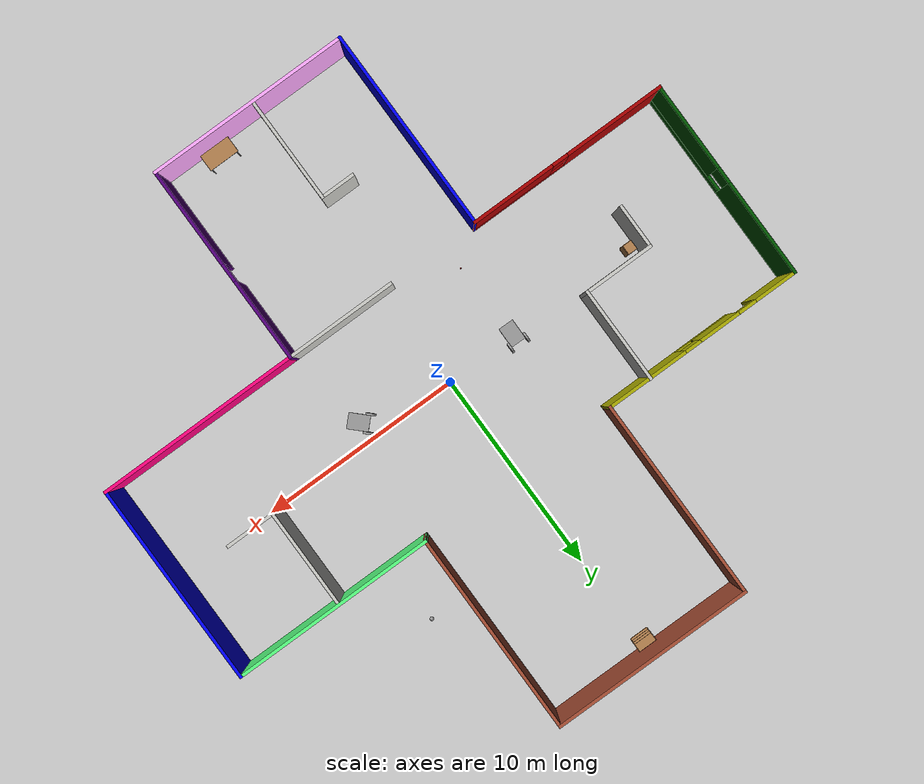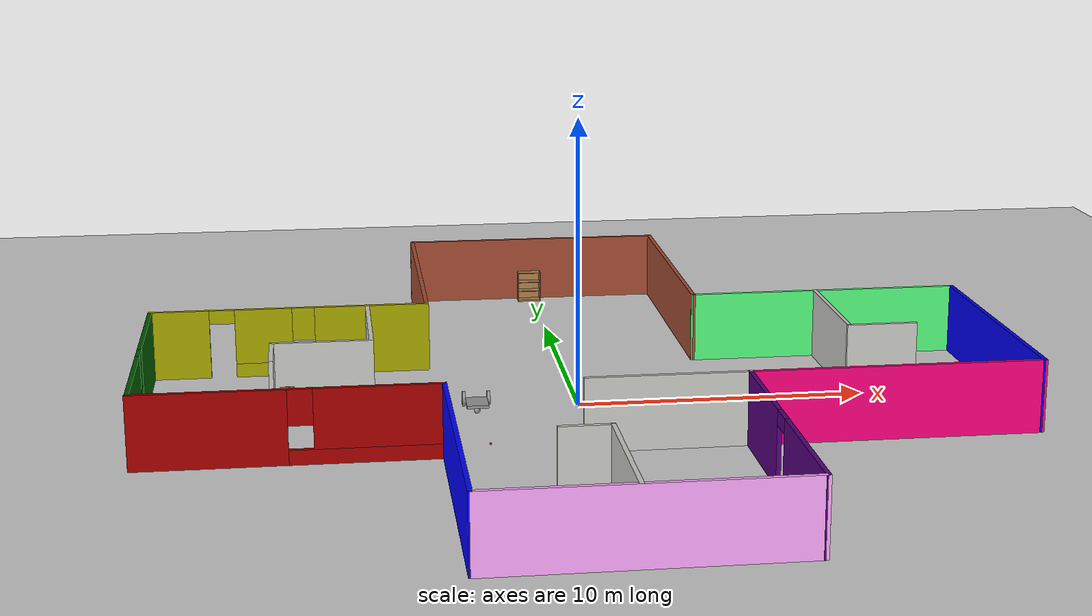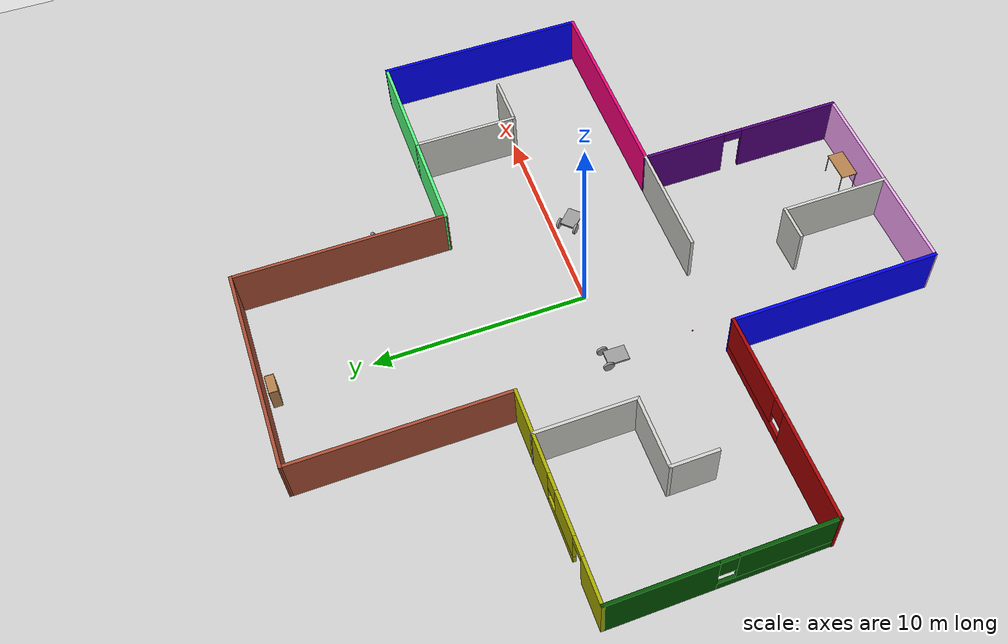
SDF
<sdf version="1.6">
 <world name="default">
  <plugin name="sumWelcome" filename="libsumWelcome.so"/>
  <light name="sun" type="directional">
   <pose>0 0 10 0 -0 0</pose>
   <diffuse>0.8 0.8 0.8 1</diffuse>
   <specular>0.2 0.2 0.2 1</specular>
   <attenuation>
    <range>1000</range>
    <constant>0.9</constant>
    <linear>0.01</linear>
    <quadratic>0.001</quadratic>
   </attenuation>
   <direction>-0.5 0.1 -0.9</direction>
  </light>
  <model name="ground_plane">
   <static>1</static>
   <link name="link">
    <collision name="collision">
     <geometry><plane><normal>0 0 1</normal><size>100 100</size></plane></geometry>
     <surface><friction><ode><mu>100</mu><mu2>50</mu2></ode></friction></surface>
    </collision>
    <visual name="visual">
     <cast_shadows>0</cast_shadows>
     <geometry><plane><normal>0 0 1</normal><size>100 100</size></plane></geometry>
     <material>
      <script><uri>file://media/materials/scripts/gazebo.material</uri><name>Gazebo/Grey</name></script>
     </material>
    </visual>
   </link>
  </model>
  <gravity>0 0 -9.8</gravity>
  <magnetic_field>6e-06 2.3e-05 -4.2e-05</magnetic_field>
  <atmosphere type="adiabatic"/>
  <physics name="default_physics" default="0" type="ode">
   <max_step_size>0.001</max_step_size>
   <real_time_factor>1</real_time_factor>
   <real_time_update_rate>1000</real_time_update_rate>
  </physics>
  <scene><ambient>0.4 0.4 0.4 1</ambient><background>0.7 0.7 0.7 1</background><shadows>1</shadows></scene>
  <spherical_coordinates>
   <surface_model>EARTH_WGS84</surface_model>
   <latitude_deg>0</latitude_deg>
   <longitude_deg>0</longitude_deg>
   <elevation>0</elevation>
   <heading_deg>0</heading_deg>
  </spherical_coordinates>
  <model name="SumBuilding">
   <link name="Wall_1">
    <collision name="Wall_1_Collision">
     <geometry><box><size>10 0.15 2.5</size></box></geometry>
     <pose>0 0 1.25 0 -0 0</pose>
    </collision>
    <visual name="Wall_1_Visual">
     <pose>0 0 1.25 0 -0 0</pose>
     <geometry><box><size>10 0.15 2.5</size></box></geometry>
     <material>
      <script><uri>file://media/materials/scripts/gazebo.material</uri><name>Gazebo/Bricks</name></script>
      <ambient>0 1 0 1</ambient>
     </material>
     <meta><layer>0</layer></meta>
    </visual>
    <pose>0.013093 14.7751 0 0 0 -0.003397</pose>
   </link>
   <link name="Wall_11">
    <pose>-9.85305 -4.92335 0 0 -0 0</pose>
    <visual name="Wall_11_Visual_0">
     <pose>-2.50345 0 1.25 0 -0 0</pose>
     <geometry><box><size>4.99311 0.15 2.5</size></box></geometry>
     <material>
      <script><uri>file://media/materials/scripts/gazebo.material</uri><name>Gazebo/Grey</name></script>
      <ambient>0.666667 0 0 1</ambient>
     </material>
     <meta><layer>0</layer></meta>
    </visual>
    <collision name="Wall_11_Collision_0">
     <geometry><box><size>4.99311 0.15 2.5</size></box></geometry>
     <pose>-2.50345 0 1.25 0 -0 0</pose>
    </collision>
    <visual name="Wall_11_Visual_1">
     <pose>2.49655 0 0.25 0 -0 0</pose>
     <geometry><box><size>5.00689 0.15 0.5</size></box></geometry>
     <material>
      <script><uri>file://media/materials/scripts/gazebo.material</uri><name>Gazebo/Grey</name></script>
      <ambient>0.666667 0 0 1</ambient>
     </material>
     <meta><layer>0</layer></meta>
    </visual>
    <collision name="Wall_11_Collision_1">
     <geometry><box><size>5.00689 0.15 0.5</size></box></geometry>
     <pose>2.49655 0 0.25 0 -0 0</pose>
    </collision>
    <visual name="Wall_11_Visual_2">
     <pose>2.89655 0 1.5 0 -0 0</pose>
     <geometry><box><size>4.20689 0.15 2</size></box></geometry>
     <material>
      <script><uri>file://media/materials/scripts/gazebo.material</uri><name>Gazebo/Grey</name></script>
      <ambient>0.666667 0 0 1</ambient>
     </material>
     <meta><layer>0</layer></meta>
    </visual>
    <collision name="Wall_11_Collision_2">
     <geometry><box><size>4.20689 0.15 2</size></box></geometry>
     <pose>2.89655 0 1.5 0 -0 0</pose>
    </collision>
    <visual name="Wall_11_Visual_3">
     <pose>0.393106 0 1.9 0 -0 0</pose>
     <geometry><box><size>0.8 0.15 1.2</size></box></geometry>
     <material>
      <script><uri>file://media/materials/scripts/gazebo.material</uri><name>Gazebo/Grey</name></script>
      <ambient>0.666667 0 0 1</ambient>
     </material>
     <meta><layer>0</layer></meta>
    </visual>
    <collision name="Wall_11_Collision_3">
     <geometry><box><size>0.8 0.15 1.2</size></box></geometry>
     <pose>0.393106 0 1.9 0 -0 0</pose>
    </collision>
   </link>
   <link name="Wall_13">
    <collision name="Wall_13_Collision">
     <geometry><box><size>10 0.15 2.5</size></box></geometry>
     <pose>0 0 1.25 0 -0 0</pose>
    </collision>
    <visual name="Wall_13_Visual">
     <pose>0 0 1.25 0 -0 0</pose>
     <geometry><box><size>10 0.15 2.5</size></box></geometry>
     <material>
      <script><uri>file://media/materials/scripts/gazebo.material</uri><name>Gazebo/Grey</name></script>
      <ambient>0 0 1 1</ambient>
     </material>
     <meta><layer>0</layer></meta>
    </visual>
    <pose>-4.92501 -9.84834 0 0 0 -1.57018</pose>
   </link>
   <link name="Wall_15">
    <collision name="Wall_15_Collision">
     <geometry><box><size>10 0.15 2.5</size></box></geometry>
     <pose>0 0 1.25 0 -0 0</pose>
    </collision>
    <visual name="Wall_15_Visual">
     <pose>0 0 1.25 0 -0 0</pose>
     <geometry><box><size>10 0.15 2.5</size></box></geometry>
     <material>
      <script><uri>file://media/materials/scripts/gazebo.material</uri><name>Gazebo/Grey</name></script>
      <ambient>1 0.666667 1 1</ambient>
     </material>
     <meta><layer>0</layer></meta>
    </visual>
    <pose>0.003026 -14.7827 0 0 0 -0.001891</pose>
   </link>
   <link name="Wall_17">
    <pose>4.92801 -9.86697 0 0 -0 1.5708</pose>
    <visual name="Wall_17_Visual_0">
     <pose>-2.50628 0 1.25 0 -0 0</pose>
     <geometry><box><size>4.98743 0.15 2.5</size></box></geometry>
     <material>
      <script><uri>file://media/materials/scripts/gazebo.material</uri><name>Gazebo/Grey</name></script>
      <ambient>0.333333 0 0.498039 1</ambient>
     </material>
     <meta><layer>0</layer></meta>
    </visual>
    <collision name="Wall_17_Collision_0">
     <geometry><box><size>4.98743 0.15 2.5</size></box></geometry>
     <pose>-2.50628 0 1.25 0 -0 0</pose>
    </collision>
    <visual name="Wall_17_Visual_1">
     <pose>2.94372 0 1.25 0 -0 0</pose>
     <geometry><box><size>4.11257 0.15 2.5</size></box></geometry>
     <material>
      <script><uri>file://media/materials/scripts/gazebo.material</uri><name>Gazebo/Grey</name></script>
      <ambient>0.333333 0 0.498039 1</ambient>
     </material>
     <meta><layer>0</layer></meta>
    </visual>
    <collision name="Wall_17_Collision_1">
     <geometry><box><size>4.11257 0.15 2.5</size></box></geometry>
     <pose>2.94372 0 1.25 0 -0 0</pose>
    </collision>
    <visual name="Wall_17_Visual_2">
     <pose>0.437432 0 2.25 0 -0 0</pose>
     <geometry><box><size>0.9 0.15 0.5</size></box></geometry>
     <material>
      <script><uri>file://media/materials/scripts/gazebo.material</uri><name>Gazebo/Grey</name></script>
      <ambient>0.333333 0 0.498039 1</ambient>
     </material>
     <meta><layer>0</layer></meta>
    </visual>
    <collision name="Wall_17_Collision_2">
     <geometry><box><size>0.9 0.15 0.5</size></box></geometry>
     <pose>0.437432 0 2.25 0 -0 0</pose>
    </collision>
   </link>
   <link name="Wall_19">
    <collision name="Wall_19_Collision">
     <geometry><box><size>10 0.15 2.5</size></box></geometry>
     <pose>0 0 1.25 0 -0 0</pose>
    </collision>
    <visual name="Wall_19_Visual">
     <pose>0 0 1.25 0 -0 0</pose>
     <geometry><box><size>10 0.15 2.5</size></box></geometry>
     <material>
      <script><uri>file://media/materials/scripts/gazebo.material</uri><name>Gazebo/Grey</name></script>
      <ambient>1 0 0.498039 1</ambient>
     </material>
     <meta><layer>0</layer></meta>
    </visual>
    <pose>9.85301 -4.94178 0 0 -0 3.8e-05</pose>
   </link>
   <link name="Wall_21">
    <collision name="Wall_21_Collision">
     <geometry><box><size>10 0.15 2.5</size></box></geometry>
     <pose>0 0 1.25 0 -0 0</pose>
    </collision>
    <visual name="Wall_21_Visual">
     <pose>0 0 1.25 0 -0 0</pose>
     <geometry><box><size>10 0.15 2.5</size></box></geometry>
     <material>
      <script><uri>file://media/materials/scripts/gazebo.material</uri><name>Gazebo/Grey</name></script>
      <ambient>0 0 1 1</ambient>
     </material>
     <meta><layer>0</layer></meta>
    </visual>
    <pose>14.7753 -0.016591 0 0 -0 1.57134</pose>
   </link>
   <link name="Wall_23">
    <collision name="Wall_23_Collision">
     <geometry><box><size>10 0.15 2.5</size></box></geometry>
     <pose>0 0 1.25 0 -0 0</pose>
    </collision>
    <visual name="Wall_23_Visual">
     <pose>0 0 1.25 0 -0 0</pose>
     <geometry><box><size>10 0.15 2.5</size></box></geometry>
     <material>
      <script><uri>file://media/materials/scripts/gazebo.material</uri><name>Gazebo/Grey</name></script>
      <ambient>0.333333 1 0.498039 1</ambient>
     </material>
     <meta><layer>0</layer></meta>
    </visual>
    <pose>9.84762 4.90841 0 0 -0 3.14159</pose>
   </link>
   <link name="Wall_27">
    <collision name="Wall_27_Collision">
     <geometry><box><size>10 0.15 2.5</size></box></geometry>
     <pose>0 0 1.25 0 -0 0</pose>
    </collision>
    <visual name="Wall_27_Visual">
     <pose>0 0 1.25 0 -0 0</pose>
     <geometry><box><size>10 0.15 2.5</size></box></geometry>
     <material>
      <script><uri>file://media/materials/scripts/gazebo.material</uri><name>Gazebo/Bricks</name></script>
      <ambient>1 1 0 1</ambient>
     </material>
     <meta><layer>0</layer></meta>
    </visual>
    <pose>4.93035 9.8334 0 0 -0 1.56923</pose>
   </link>
   <link name="Wall_29">
    <collision name="Wall_29_Collision">
     <geometry><box><size>5 0.15 2.5</size></box></geometry>
     <pose>0 0 1.25 0 -0 0</pose>
    </collision>
    <visual name="Wall_29_Visual">
     <pose>0 0 1.25 0 -0 0</pose>
     <geometry><box><size>5 0.15 2.5</size></box></geometry>
     <material>
      <script><uri>file://media/materials/scripts/gazebo.material</uri><name>Gazebo/CeilingTiled</name></script>
      <ambient>0.333333 0.333333 1 1</ambient>
     </material>
     <meta><layer>0</layer></meta>
    </visual>
    <pose>9.53345 2.48414 0 0 0 -1.5708</pose>
   </link>
   <link name="Wall_3">
    <collision name="Wall_3_Collision">
     <geometry><box><size>10 0.15 2.5</size></box></geometry>
     <pose>0 0 1.25 0 -0 0</pose>
    </collision>
    <visual name="Wall_3_Visual">
     <pose>0 0 1.25 0 -0 0</pose>
     <geometry><box><size>10 0.15 2.5</size></box></geometry>
     <material>
      <script><uri>file://media/materials/scripts/gazebo.material</uri><name>Gazebo/Bricks</name></script>
      <ambient>0.666667 0.333333 0 1</ambient>
     </material>
     <meta><layer>0</layer></meta>
    </visual>
    <pose>-4.91188 9.86685 0 0 0 -1.5708</pose>
   </link>
   <link name="Wall_30">
    <collision name="Wall_30_Collision">
     <geometry><box><size>2.5 0.15 2.5</size></box></geometry>
     <pose>0 0 1.25 0 -0 0</pose>
    </collision>
    <visual name="Wall_30_Visual">
     <pose>0 0 1.25 0 -0 0</pose>
     <geometry><box><size>2.5 0.15 2.5</size></box></geometry>
     <material>
      <script><uri>file://media/materials/scripts/gazebo.material</uri><name>Gazebo/CeilingTiled</name></script>
      <ambient>0.333333 0.333333 1 1</ambient>
     </material>
     <meta><layer>0</layer></meta>
    </visual>
    <pose>10.7084 0.059135 0 0 -0 0</pose>
   </link>
   <link name="Wall_32">
    <collision name="Wall_32_Collision">
     <geometry><box><size>5.25 0.15 2.5</size></box></geometry>
     <pose>0 0 1.25 0 -0 0</pose>
    </collision>
    <visual name="Wall_32_Visual">
     <pose>0 0 1.25 0 -0 0</pose>
     <geometry><box><size>5.25 0.15 2.5</size></box></geometry>
     <material>
      <script><uri>file://media/materials/scripts/gazebo.material</uri><name>Gazebo/CeilingTiled</name></script>
      <ambient>0.333333 0.666667 1 1</ambient>
     </material>
     <meta><layer>0</layer></meta>
    </visual>
    <pose>-0.257513 -12.2298 0 0 -0 1.5708</pose>
   </link>
   <link name="Wall_33">
    <collision name="Wall_33_Collision">
     <geometry><box><size>1.75 0.15 2.5</size></box></geometry>
     <pose>0 0 1.25 0 -0 0</pose>
    </collision>
    <visual name="Wall_33_Visual">
     <pose>0 0 1.25 0 -0 0</pose>
     <geometry><box><size>1.75 0.15 2.5</size></box></geometry>
     <material>
      <script><uri>file://media/materials/scripts/gazebo.material</uri><name>Gazebo/CeilingTiled</name></script>
      <ambient>0.333333 0 0.498039 1</ambient>
     </material>
     <meta><layer>0</layer></meta>
    </visual>
    <pose>-1.05751 -9.67979 0 0 -0 3.14159</pose>
   </link>
   <link name="Wall_35">
    <collision name="Wall_35_Collision">
     <geometry><box><size>5.5 0.15 2.5</size></box></geometry>
     <pose>0 0 1.25 0 -0 0</pose>
    </collision>
    <visual name="Wall_35_Visual">
     <pose>0 0 1.25 0 -0 0</pose>
     <geometry><box><size>5.5 0.15 2.5</size></box></geometry>
     <material>
      <script><uri>file://media/materials/scripts/gazebo.material</uri><name>Gazebo/CeilingTiled</name></script>
      <ambient>1 0.666667 0 1</ambient>
     </material>
     <meta><layer>0</layer></meta>
    </visual>
    <pose>2.25301 -4.94197 0 0 -0 3.14159</pose>
   </link>
   <link name="Wall_37">
    <collision name="Wall_37_Collision">
     <geometry><box><size>4.75 0.15 2.5</size></box></geometry>
     <pose>0 0 1.25 0 -0 0</pose>
    </collision>
    <visual name="Wall_37_Visual">
     <pose>0 0 1.25 0 -0 0</pose>
     <geometry><box><size>4.75 0.15 2.5</size></box></geometry>
     <material>
      <script><uri>file://media/materials/scripts/gazebo.material</uri><name>Gazebo/CeilingTiled</name></script>
      <ambient>0.666667 0 1 1</ambient>
     </material>
     <meta><layer>0</layer></meta>
    </visual>
    <pose>-7.05233 2.66264 0 0 0 -1.5708</pose>
   </link>
   <link name="Wall_38">
    <collision name="Wall_38_Collision">
     <geometry><box><size>3.5 0.15 2.5</size></box></geometry>
     <pose>0 0 1.25 0 -0 0</pose>
    </collision>
    <visual name="Wall_38_Visual">
     <pose>0 0 1.25 0 -0 0</pose>
     <geometry><box><size>3.5 0.15 2.5</size></box></geometry>
     <material>
      <script><uri>file://media/materials/scripts/gazebo.material</uri><name>Gazebo/CeilingTiled</name></script>
      <ambient>0.666667 0 1 1</ambient>
     </material>
     <meta><layer>0</layer></meta>
    </visual>
    <pose>-8.72733 0.362638 0 0 -0 3.14159</pose>
   </link>
   <link name="Wall_39">
    <collision name="Wall_39_Collision">
     <geometry><box><size>2.25 0.15 2.5</size></box></geometry>
     <pose>0 0 1.25 0 -0 0</pose>
    </collision>
    <visual name="Wall_39_Visual">
     <pose>0 0 1.25 0 -0 0</pose>
     <geometry><box><size>2.25 0.15 2.5</size></box></geometry>
     <material>
      <script><uri>file://media/materials/scripts/gazebo.material</uri><name>Gazebo/CeilingTiled</name></script>
      <ambient>0.666667 0 1 1</ambient>
     </material>
     <meta><layer>0</layer></meta>
    </visual>
    <pose>-10.4023 -0.687362 0 0 0 -1.5708</pose>
   </link>
   <link name="Wall_7">
    <pose>-9.83688 4.94185 0 0 -0 3.14159</pose>
    <visual name="Wall_7_Visual_0">
     <pose>-2.94197 0 1.25 0 -0 0</pose>
     <geometry><box><size>4.11606 0.15 2.5</size></box></geometry>
     <material>
      <script><uri>file://media/materials/scripts/gazebo.material</uri><name>Gazebo/Grey</name></script>
      <ambient>0.666667 0.666667 0 1</ambient>
     </material>
     <meta><layer>0</layer></meta>
    </visual>
    <collision name="Wall_7_Collision_0">
     <geometry><box><size>4.11606 0.15 2.5</size></box></geometry>
     <pose>-2.94197 0 1.25 0 -0 0</pose>
    </collision>
    <visual name="Wall_7_Visual_1">
     <pose>3.9276 0 1.25 0 -0 0</pose>
     <geometry><box><size>2.14481 0.15 2.5</size></box></geometry>
     <material>
      <script><uri>file://media/materials/scripts/gazebo.material</uri><name>Gazebo/Grey</name></script>
      <ambient>0.666667 0.666667 0 1</ambient>
     </material>
     <meta><layer>0</layer></meta>
    </visual>
    <collision name="Wall_7_Collision_1">
     <geometry><box><size>2.14481 0.15 2.5</size></box></geometry>
     <pose>3.9276 0 1.25 0 -0 0</pose>
    </collision>
    <visual name="Wall_7_Visual_2">
     <pose>0.535626 0 0.25 0 -0 0</pose>
     <geometry><box><size>2.83914 0.15 0.5</size></box></geometry>
     <material>
      <script><uri>file://media/materials/scripts/gazebo.material</uri><name>Gazebo/Grey</name></script>
      <ambient>0.666667 0.666667 0 1</ambient>
     </material>
     <meta><layer>0</layer></meta>
    </visual>
    <collision name="Wall_7_Collision_2">
     <geometry><box><size>2.83914 0.15 0.5</size></box></geometry>
     <pose>0.535626 0 0.25 0 -0 0</pose>
    </collision>
    <visual name="Wall_7_Visual_3">
     <pose>0.935626 0 1.5 0 -0 0</pose>
     <geometry><box><size>2.03913 0.15 2</size></box></geometry>
     <material>
      <script><uri>file://media/materials/scripts/gazebo.material</uri><name>Gazebo/Grey</name></script>
      <ambient>0.666667 0.666667 0 1</ambient>
     </material>
     <meta><layer>0</layer></meta>
    </visual>
    <collision name="Wall_7_Collision_3">
     <geometry><box><size>2.03913 0.15 2</size></box></geometry>
     <pose>0.935626 0 1.5 0 -0 0</pose>
    </collision>
    <visual name="Wall_7_Visual_4">
     <pose>-0.483942 0 1.9 0 -0 0</pose>
     <geometry><box><size>0.8 0.15 1.2</size></box></geometry>
     <material>
      <script><uri>file://media/materials/scripts/gazebo.material</uri><name>Gazebo/Grey</name></script>
      <ambient>0.666667 0.666667 0 1</ambient>
     </material>
     <meta><layer>0</layer></meta>
    </visual>
    <collision name="Wall_7_Collision_4">
     <geometry><box><size>0.8 0.15 1.2</size></box></geometry>
     <pose>-0.483942 0 1.9 0 -0 0</pose>
    </collision>
    <visual name="Wall_7_Visual_5">
     <pose>2.40519 0 2.25 0 -0 0</pose>
     <geometry><box><size>0.9 0.15 0.5</size></box></geometry>
     <material>
      <script><uri>file://media/materials/scripts/gazebo.material</uri><name>Gazebo/Grey</name></script>
      <ambient>0.666667 0.666667 0 1</ambient>
     </material>
     <meta><layer>0</layer></meta>
    </visual>
    <collision name="Wall_7_Collision_5">
     <geometry><box><size>0.9 0.15 0.5</size></box></geometry>
     <pose>2.40519 0 2.25 0 -0 0</pose>
    </collision>
   </link>
   <link name="Wall_9">
    <pose>-14.7619 0.016854 0 0 0 -1.5708</pose>
    <visual name="Wall_9_Visual_0">
     <pose>-2.57802 0 1.25 0 -0 0</pose>
     <geometry><box><size>4.84396 0.15 2.5</size></box></geometry>
     <material>
      <script><uri>file://media/materials/scripts/gazebo.material</uri><name>Gazebo/Grey</name></script>
      <ambient>0 0.333333 0 1</ambient>
     </material>
     <meta><layer>0</layer></meta>
    </visual>
    <collision name="Wall_9_Collision_0">
     <geometry><box><size>4.84396 0.15 2.5</size></box></geometry>
     <pose>-2.57802 0 1.25 0 -0 0</pose>
    </collision>
    <visual name="Wall_9_Visual_1">
     <pose>2.42198 0 0.25 0 -0 0</pose>
     <geometry><box><size>5.15604 0.15 0.5</size></box></geometry>
     <material>
      <script><uri>file://media/materials/scripts/gazebo.material</uri><name>Gazebo/Grey</name></script>
      <ambient>0 0.333333 0 1</ambient>
     </material>
     <meta><layer>0</layer></meta>
    </visual>
    <collision name="Wall_9_Collision_1">
     <geometry><box><size>5.15604 0.15 0.5</size></box></geometry>
     <pose>2.42198 0 0.25 0 -0 0</pose>
    </collision>
    <visual name="Wall_9_Visual_2">
     <pose>2.82198 0 1.5 0 -0 0</pose>
     <geometry><box><size>4.35604 0.15 2</size></box></geometry>
     <material>
      <script><uri>file://media/materials/scripts/gazebo.material</uri><name>Gazebo/Grey</name></script>
      <ambient>0 0.333333 0 1</ambient>
     </material>
     <meta><layer>0</layer></meta>
    </visual>
    <collision name="Wall_9_Collision_2">
     <geometry><box><size>4.35604 0.15 2</size></box></geometry>
     <pose>2.82198 0 1.5 0 -0 0</pose>
    </collision>
    <visual name="Wall_9_Visual_3">
     <pose>0.243959 0 1.9 0 -0 0</pose>
     <geometry><box><size>0.8 0.15 1.2</size></box></geometry>
     <material>
      <script><uri>file://media/materials/scripts/gazebo.material</uri><name>Gazebo/Grey</name></script>
      <ambient>0 0.333333 0 1</ambient>
     </material>
     <meta><layer>0</layer></meta>
    </visual>
    <collision name="Wall_9_Collision_3">
     <geometry><box><size>0.8 0.15 1.2</size></box></geometry>
     <pose>0.243959 0 1.9 0 -0 0</pose>
    </collision>
   </link>
   <static>1</static>
  </model>
  <model name="cabinet">
   <static>1</static>
   <link name="cabinet_bottom_plate">
    <inertial>
     <pose>0 0 -1 0 -0 0</pose>
     <inertia><ixx>2.05</ixx><ixy>0</ixy><ixz>0</ixz><iyy>2.05</iyy><iyz>0</iyz><izz>2.05</izz></inertia>
     <mass>25</mass>
    </inertial>
    <collision name="cabinet_bottom_plate_geom">
     <pose>0 0 0.01 0 -0 0</pose>
     <geometry><box><size>0.45 0.45 0.02</size></box></geometry>
    </collision>
    <visual name="cabinet_bottom_plate_geom_visual">
     <pose>0 0 0.01 0 -0 0</pose>
     <geometry><box><size>0.45 0.45 0.02</size></box></geometry>
     <material>
      <script><uri>file://media/materials/scripts/gazebo.material</uri><name>Gazebo/Wood</name></script>
     </material>
    </visual>
    <collision name="cabinet_bottom_plate_geom_cabinet_back_plate">
     <pose>0.235 0 0.51 0 -0 0</pose>
     <geometry><box><size>0.02 0.45 1.02</size></box></geometry>
    </collision>
    <visual name="cabinet_bottom_plate_geom_cabinet_back_plate_visual">
     <pose>0.235 0 0.51 0 -0 0</pose>
     <geometry><box><size>0.02 0.45 1.02</size></box></geometry>
     <material>
      <script><uri>file://media/materials/scripts/gazebo.material</uri><name>Gazebo/Wood</name></script>
     </material>
    </visual>
    <collision name="cabinet_bottom_plate_geom_cabinet_left_plate">
     <pose>0 0.235 0.51 0 -0 0</pose>
     <geometry><box><size>0.45 0.02 1.02</size></box></geometry>
    </collision>
    <visual name="cabinet_bottom_plate_geom_cabinet_left_plate_visual">
     <pose>0 0.235 0.51 0 -0 0</pose>
     <geometry><box><size>0.45 0.02 1.02</size></box></geometry>
     <material>
      <script><uri>file://media/materials/scripts/gazebo.material</uri><name>Gazebo/Wood</name></script>
     </material>
    </visual>
    <collision name="cabinet_bottom_plate_geom_cabinet_middle_plate">
     <pose>0 0 0.51 0 -0 0</pose>
     <geometry><box><size>0.45 0.45 0.02</size></box></geometry>
    </collision>
    <visual name="cabinet_bottom_plate_geom_cabinet_middle_plate_visual">
     <pose>0 0 0.51 0 -0 0</pose>
     <geometry><box><size>0.45 0.45 0.02</size></box></geometry>
     <material>
      <script><uri>file://media/materials/scripts/gazebo.material</uri><name>Gazebo/Wood</name></script>
     </material>
    </visual>
    <collision name="cabinet_bottom_plate_geom_cabinet_right_plate">
     <pose>0 -0.235 0.51 0 -0 0</pose>
     <geometry><box><size>0.45 0.02 1.02</size></box></geometry>
    </collision>
    <visual name="cabinet_bottom_plate_geom_cabinet_right_plate_visual">
     <pose>0 -0.235 0.51 0 -0 0</pose>
     <geometry><box><size>0.45 0.02 1.02</size></box></geometry>
     <material>
      <script><uri>file://media/materials/scripts/gazebo.material</uri><name>Gazebo/Wood</name></script>
     </material>
    </visual>
    <collision name="cabinet_bottom_plate_geom_cabinet_top_plate">
     <pose>0 0 1.01 0 -0 0</pose>
     <geometry><box><size>0.45 0.45 0.02</size></box></geometry>
    </collision>
    <visual name="cabinet_bottom_plate_geom_cabinet_top_plate_visual">
     <pose>0 0 1.01 0 -0 0</pose>
     <geometry><box><size>0.45 0.45 0.02</size></box></geometry>
     <material>
      <script><uri>file://media/materials/scripts/gazebo.material</uri><name>Gazebo/Wood</name></script>
     </material>
    </visual>
   </link>
   <pose>-9.9403 -0.12043 0 0 -0 0</pose>
  </model>
  <model name="bookshelf">
   <static>1</static>
   <link name="link">
    <inertial><mass>1</mass></inertial>
    <collision name="back">
     <pose>0 0.005 0.6 0 -0 0</pose>
     <geometry><box><size>0.9 0.01 1.2</size></box></geometry>
    </collision>
    <visual name="visual1">
     <pose>0 0.005 0.6 0 -0 0</pose>
     <geometry><box><size>0.9 0.01 1.2</size></box></geometry>
     <material>
      <script><uri>file://media/materials/scripts/gazebo.material</uri><name>Gazebo/Wood</name></script>
     </material>
    </visual>
    <collision name="left_side">
     <pose>0.45 -0.195 0.6 0 -0 0</pose>
     <geometry><box><size>0.02 0.4 1.2</size></box></geometry>
    </collision>
    <visual name="visual2">
     <pose>0.45 -0.195 0.6 0 -0 0</pose>
     <geometry><box><size>0.02 0.4 1.2</size></box></geometry>
     <material>
      <script><uri>file://media/materials/scripts/gazebo.material</uri><name>Gazebo/Wood</name></script>
     </material>
    </visual>
    <collision name="right_side">
     <pose>-0.45 -0.195 0.6 0 -0 0</pose>
     <geometry><box><size>0.02 0.4 1.2</size></box></geometry>
    </collision>
    <visual name="visual3">
     <pose>-0.45 -0.195 0.6 0 -0 0</pose>
     <geometry><box><size>0.02 0.4 1.2</size></box></geometry>
     <material>
      <script><uri>file://media/materials/scripts/gazebo.material</uri><name>Gazebo/Wood</name></script>
     </material>
    </visual>
    <collision name="bottom">
     <pose>0 -0.195 0.03 0 -0 0</pose>
     <geometry><box><size>0.88 0.4 0.06</size></box></geometry>
    </collision>
    <visual name="visual4">
     <pose>0 -0.195 0.03 0 -0 0</pose>
     <geometry><box><size>0.88 0.4 0.06</size></box></geometry>
     <material>
      <script><uri>file://media/materials/scripts/gazebo.material</uri><name>Gazebo/Wood</name></script>
     </material>
    </visual>
    <collision name="top">
     <pose>0 -0.195 1.19 0 -0 0</pose>
     <geometry><box><size>0.88 0.4 0.02</size></box></geometry>
    </collision>
    <visual name="visual5">
     <pose>0 -0.195 1.19 0 -0 0</pose>
     <geometry><box><size>0.88 0.4 0.02</size></box></geometry>
     <material>
      <script><uri>file://media/materials/scripts/gazebo.material</uri><name>Gazebo/Wood</name></script>
     </material>
    </visual>
    <collision name="low_shelf">
     <pose>0 -0.195 0.43 0 -0 0</pose>
     <geometry><box><size>0.88 0.4 0.02</size></box></geometry>
    </collision>
    <visual name="visual6">
     <pose>0 -0.195 0.43 0 -0 0</pose>
     <geometry><box><size>0.88 0.4 0.02</size></box></geometry>
     <material>
      <script><uri>file://media/materials/scripts/gazebo.material</uri><name>Gazebo/Wood</name></script>
     </material>
    </visual>
    <collision name="high_shelf">
     <pose>0 -0.195 0.8 0 -0 0</pose>
     <geometry><box><size>0.88 0.4 0.02</size></box></geometry>
    </collision>
    <visual name="visual7">
     <pose>0 -0.195 0.8 0 -0 0</pose>
     <geometry><box><size>0.88 0.4 0.02</size></box></geometry>
     <material>
      <script><uri>file://media/materials/scripts/gazebo.material</uri><name>Gazebo/Wood</name></script>
     </material>
    </visual>
   </link>
   <pose>-0.164365 14.5404 0 0 -0 0</pose>
  </model>
  <model name="cricket_ball">
   <link name="link">
    <pose>0 0 0.0375 0 -0 0</pose>
    <inertial>
     <mass>0.1467</mass>
     <inertia>
      <ixx>8.25187e-05</ixx>
      <ixy>0</ixy>
      <ixz>0</ixz>
      <iyy>8.25187e-05</iyy>
      <iyz>0</iyz>
      <izz>8.25187e-05</izz>
     </inertia>
    </inertial>
    <collision name="collision">
     <geometry><sphere><radius>0.0375</radius></sphere></geometry>
     <surface>
      <contact>
       <poissons_ratio>0.347</poissons_ratio>
       <elastic_modulus>8.8e+09</elastic_modulus>
       <ode><kp>100000</kp><kd>100</kd><max_vel>100</max_vel><min_depth>0.001</min_depth></ode>
      </contact>
      <friction>
       <torsional>
        <coefficient>1</coefficient>
        <use_patch_radius>0</use_patch_radius>
        <surface_radius>0.01</surface_radius>
       </torsional>
      </friction>
     </surface>
    </collision>
    <visual name="visual">
     <geometry><sphere><radius>0.0375</radius></sphere></geometry>
     <material>
      <script><uri>file://media/materials/scripts/gazebo.material</uri><name>Gazebo/Red</name></script>
     </material>
    </visual>
    <velocity_decay><linear>0</linear><angular>0.005</angular></velocity_decay>
   </link>
   <pose>-3.3977 -3.86015 0.008993 0 -0 0</pose>
  </model>
  <model name="table">
   <static>1</static>
   <link name="link">
    <collision name="surface">
     <pose>0 0 1 0 -0 0</pose>
     <geometry><box><size>1.5 0.8 0.03</size></box></geometry>
     <surface><friction><ode><mu>0.6</mu><mu2>0.6</mu2></ode></friction></surface>
    </collision>
    <visual name="visual1">
     <pose>0 0 1 0 -0 0</pose>
     <geometry><box><size>1.5 0.8 0.03</size></box></geometry>
     <material>
      <script><uri>file://media/materials/scripts/gazebo.material</uri><name>Gazebo/Wood</name></script>
     </material>
    </visual>
    <collision name="front_left_leg">
     <pose>0.68 0.38 0.5 0 -0 0</pose>
     <geometry><cylinder><radius>0.02</radius><length>1</length></cylinder></geometry>
    </collision>
    <visual name="front_left_leg">
     <pose>0.68 0.38 0.5 0 -0 0</pose>
     <geometry><cylinder><radius>0.02</radius><length>1</length></cylinder></geometry>
     <material>
      <script><uri>file://media/materials/scripts/gazebo.material</uri><name>Gazebo/Grey</name></script>
     </material>
    </visual>
    <collision name="front_right_leg">
     <pose>0.68 -0.38 0.5 0 -0 0</pose>
     <geometry><cylinder><radius>0.02</radius><length>1</length></cylinder></geometry>
    </collision>
    <visual name="front_right_leg">
     <pose>0.68 -0.38 0.5 0 -0 0</pose>
     <geometry><cylinder><radius>0.02</radius><length>1</length></cylinder></geometry>
     <material>
      <script><uri>file://media/materials/scripts/gazebo.material</uri><name>Gazebo/Grey</name></script>
     </material>
    </visual>
    <collision name="back_right_leg">
     <pose>-0.68 -0.38 0.5 0 -0 0</pose>
     <geometry><cylinder><radius>0.02</radius><length>1</length></cylinder></geometry>
    </collision>
    <visual name="back_right_leg">
     <pose>-0.68 -0.38 0.5 0 -0 0</pose>
     <geometry><cylinder><radius>0.02</radius><length>1</length></cylinder></geometry>
     <material>
      <script><uri>file://media/materials/scripts/gazebo.material</uri><name>Gazebo/Grey</name></script>
     </material>
    </visual>
    <collision name="back_left_leg">
     <pose>-0.68 0.38 0.5 0 -0 0</pose>
     <geometry><cylinder><radius>0.02</radius><length>1</length></cylinder></geometry>
    </collision>
    <visual name="back_left_leg">
     <pose>-0.68 0.38 0.5 0 -0 0</pose>
     <geometry><cylinder><radius>0.02</radius><length>1</length></cylinder></geometry>
     <material>
      <script><uri>file://media/materials/scripts/gazebo.material</uri><name>Gazebo/Grey</name></script>
     </material>
    </visual>
   </link>
   <pose>2.2819 -14.2061 0 0 -0 0</pose>
  </model>
  <model name="RobotCar">
   <link name="link_0">
    <pose>0.005 -0.15 0.0375 0 -0 0</pose>
    <inertial>
     <mass>1</mass>
     <inertia>
      <ixx>0.166667</ixx>
      <ixy>0</ixy>
      <ixz>0</ixz>
      <iyy>0.166667</iyy>
      <iyz>0</iyz>
      <izz>0.166667</izz>
     </inertia>
    </inertial>
    <visual name="visual">
     <geometry><box><size>0.75 1 0.1</size></box></geometry>
     <material>
      <lighting>1</lighting>
      <script><uri>file://media/materials/scripts/gazebo.material</uri><name>Gazebo/Grey</name></script>
      <shader type="pixel"><normal_map>__default__</normal_map></shader>
      <ambient>0.3 0.3 0.3 1</ambient>
      <diffuse>0.7 0.7 0.7 1</diffuse>
      <specular>0.01 0.01 0.01 1</specular>
      <emissive>0 0 0 1</emissive>
     </material>
    </visual>
    <collision name="collision">
     <geometry><box><size>0.75 1 0.1</size></box></geometry>
     <surface>
      <friction>
       <ode><mu>1</mu><mu2>1</mu2><fdir1>0 0 0</fdir1><slip1>0</slip1><slip2>0</slip2></ode>
       <torsional>
        <coefficient>1</coefficient>
        <patch_radius>0</patch_radius>
        <surface_radius>0</surface_radius>
        <use_patch_radius>1</use_patch_radius>
        <ode><slip>0</slip></ode>
       </torsional>
      </friction>
      <bounce><restitution_coefficient>0</restitution_coefficient><threshold>1e+06</threshold></bounce>
      <contact>
       <collide_without_contact>0</collide_without_contact>
       <collide_without_contact_bitmask>1</collide_without_contact_bitmask>
       <collide_bitmask>1</collide_bitmask>
       <ode>
        <soft_cfm>0</soft_cfm>
        <soft_erp>0.2</soft_erp>
        <kp>1e+13</kp>
        <kd>1</kd>
        <max_vel>0.01</max_vel>
        <min_depth>0</min_depth>
       </ode>
       <bullet>
        <split_impulse>1</split_impulse>
        <split_impulse_penetration_threshold>-0.01</split_impulse_penetration_threshold>
        <soft_cfm>0</soft_cfm>
        <soft_erp>0.2</soft_erp>
        <kp>1e+13</kp>
        <kd>1</kd>
       </bullet>
      </contact>
     </surface>
    </collision>
   </link>
   <link name="link_1">
    <pose>0.430024 0.35 0.0375 0 1.5707 0</pose>
    <inertial>
     <mass>1</mass>
     <inertia><ixx>0.145833</ixx><ixy>0</ixy><ixz>0</ixz><iyy>0.145833</iyy><iyz>0</iyz><izz>0.125</izz></inertia>
    </inertial>
    <visual name="visual">
     <geometry><cylinder><radius>0.25</radius><length>0.1</length></cylinder></geometry>
     <material>
      <lighting>1</lighting>
      <script><uri>file://media/materials/scripts/gazebo.material</uri><name>Gazebo/Grey</name></script>
      <shader type="pixel"><normal_map>__default__</normal_map></shader>
      <ambient>0.3 0.3 0.3 1</ambient>
      <diffuse>0.7 0.7 0.7 1</diffuse>
      <specular>0.01 0.01 0.01 1</specular>
      <emissive>0 0 0 1</emissive>
     </material>
    </visual>
    <collision name="collision">
     <geometry><cylinder><radius>0.25</radius><length>0.1</length></cylinder></geometry>
     <surface>
      <friction>
       <ode><mu>1</mu><mu2>1</mu2><fdir1>0 0 0</fdir1><slip1>0</slip1><slip2>0</slip2></ode>
       <torsional>
        <coefficient>1</coefficient>
        <patch_radius>0</patch_radius>
        <surface_radius>0</surface_radius>
        <use_patch_radius>1</use_patch_radius>
        <ode><slip>0</slip></ode>
       </torsional>
      </friction>
      <bounce><restitution_coefficient>0</restitution_coefficient><threshold>1e+06</threshold></bounce>
      <contact>
       <collide_without_contact>0</collide_without_contact>
       <collide_without_contact_bitmask>1</collide_without_contact_bitmask>
       <collide_bitmask>1</collide_bitmask>
       <ode>
        <soft_cfm>0</soft_cfm>
        <soft_erp>0.2</soft_erp>
        <kp>1e+13</kp>
        <kd>1</kd>
        <max_vel>0.01</max_vel>
        <min_depth>0</min_depth>
       </ode>
       <bullet>
        <split_impulse>1</split_impulse>
        <split_impulse_penetration_threshold>-0.01</split_impulse_penetration_threshold>
        <soft_cfm>0</soft_cfm>
        <soft_erp>0.2</soft_erp>
        <kp>1e+13</kp>
        <kd>1</kd>
       </bullet>
      </contact>
     </surface>
    </collision>
   </link>
   <link name="link_1_clone">
    <pose>-0.420024 0.35 0.0375 0 1.5707 0</pose>
    <inertial>
     <mass>1</mass>
     <inertia><ixx>0.145833</ixx><ixy>0</ixy><ixz>0</ixz><iyy>0.145833</iyy><iyz>0</iyz><izz>0.125</izz></inertia>
    </inertial>
    <visual name="visual">
     <geometry><cylinder><radius>0.25</radius><length>0.1</length></cylinder></geometry>
     <material>
      <lighting>1</lighting>
      <script><uri>file://media/materials/scripts/gazebo.material</uri><name>Gazebo/Grey</name></script>
      <shader type="pixel"><normal_map>__default__</normal_map></shader>
      <ambient>0.3 0.3 0.3 1</ambient>
      <diffuse>0.7 0.7 0.7 1</diffuse>
      <specular>0.01 0.01 0.01 1</specular>
      <emissive>0 0 0 1</emissive>
     </material>
    </visual>
    <collision name="collision">
     <geometry><cylinder><radius>0.25</radius><length>0.1</length></cylinder></geometry>
     <surface>
      <friction>
       <ode><mu>1</mu><mu2>1</mu2><fdir1>0 0 0</fdir1><slip1>0</slip1><slip2>0</slip2></ode>
       <torsional>
        <coefficient>1</coefficient>
        <patch_radius>0</patch_radius>
        <surface_radius>0</surface_radius>
        <use_patch_radius>1</use_patch_radius>
        <ode><slip>0</slip></ode>
       </torsional>
      </friction>
      <bounce><restitution_coefficient>0</restitution_coefficient><threshold>1e+06</threshold></bounce>
      <contact>
       <collide_without_contact>0</collide_without_contact>
       <collide_without_contact_bitmask>1</collide_without_contact_bitmask>
       <collide_bitmask>1</collide_bitmask>
       <ode>
        <soft_cfm>0</soft_cfm>
        <soft_erp>0.2</soft_erp>
        <kp>1e+13</kp>
        <kd>1</kd>
        <max_vel>0.01</max_vel>
        <min_depth>0</min_depth>
       </ode>
       <bullet>
        <split_impulse>1</split_impulse>
        <split_impulse_penetration_threshold>-0.01</split_impulse_penetration_threshold>
        <soft_cfm>0</soft_cfm>
        <soft_erp>0.2</soft_erp>
        <kp>1e+13</kp>
        <kd>1</kd>
       </bullet>
      </contact>
     </surface>
    </collision>
   </link>
   <link name="link_2">
    <pose>-0.015 -0.55 -0.1125 0 -0 0</pose>
    <inertial>
     <mass>1</mass>
     <inertia><ixx>0.1</ixx><ixy>0</ixy><ixz>0</ixz><iyy>0.1</iyy><iyz>0</iyz><izz>0.1</izz></inertia>
    </inertial>
    <visual name="visual">
     <geometry><sphere><radius>0.1</radius></sphere></geometry>
     <material>
      <lighting>1</lighting>
      <script><uri>file://media/materials/scripts/gazebo.material</uri><name>Gazebo/Grey</name></script>
      <shader type="pixel"><normal_map>__default__</normal_map></shader>
      <ambient>0.3 0.3 0.3 1</ambient>
      <diffuse>0.7 0.7 0.7 1</diffuse>
      <specular>0.01 0.01 0.01 1</specular>
      <emissive>0 0 0 1</emissive>
     </material>
    </visual>
    <collision name="collision">
     <geometry><sphere><radius>0.1</radius></sphere></geometry>
     <surface>
      <friction>
       <ode><mu>1</mu><mu2>1</mu2><fdir1>0 0 0</fdir1><slip1>0</slip1><slip2>0</slip2></ode>
       <torsional>
        <coefficient>1</coefficient>
        <patch_radius>0</patch_radius>
        <surface_radius>0</surface_radius>
        <use_patch_radius>1</use_patch_radius>
        <ode><slip>0</slip></ode>
       </torsional>
      </friction>
      <bounce><restitution_coefficient>0</restitution_coefficient><threshold>1e+06</threshold></bounce>
      <contact>
       <collide_without_contact>0</collide_without_contact>
       <collide_without_contact_bitmask>1</collide_without_contact_bitmask>
       <collide_bitmask>1</collide_bitmask>
       <ode>
        <soft_cfm>0</soft_cfm>
        <soft_erp>0.2</soft_erp>
        <kp>1e+13</kp>
        <kd>1</kd>
        <max_vel>0.01</max_vel>
        <min_depth>0</min_depth>
       </ode>
       <bullet>
        <split_impulse>1</split_impulse>
        <split_impulse_penetration_threshold>-0.01</split_impulse_penetration_threshold>
        <soft_cfm>0</soft_cfm>
        <soft_erp>0.2</soft_erp>
        <kp>1e+13</kp>
        <kd>1</kd>
       </bullet>
      </contact>
     </surface>
    </collision>
   </link>
   <joint name="link_0_JOINT_0" type="revolute">
    <parent>link_0</parent>
    <child>link_1</child>
    <axis>
     <xyz>0 0 1</xyz>
     <use_parent_model_frame>0</use_parent_model_frame>
     <limit>
      <lower>-1.79769e+308</lower>
      <upper>1.79769e+308</upper>
      <effort>-1</effort>
      <velocity>-1</velocity>
     </limit>
     <dynamics>
      <spring_reference>0</spring_reference>
      <spring_stiffness>0</spring_stiffness>
      <damping>0</damping>
     </dynamics>
    </axis>
    <physics>
     <ode><limit><cfm>0</cfm><erp>0.2</erp></limit><suspension><cfm>0</cfm><erp>0.2</erp></suspension></ode>
    </physics>
   </joint>
   <joint name="link_0_JOINT_1" type="revolute">
    <parent>link_0</parent>
    <child>link_1_clone</child>
    <axis>
     <xyz>0 0 1</xyz>
     <use_parent_model_frame>0</use_parent_model_frame>
     <limit>
      <lower>-1.79769e+308</lower>
      <upper>1.79769e+308</upper>
      <effort>-1</effort>
      <velocity>-1</velocity>
     </limit>
     <dynamics>
      <spring_reference>0</spring_reference>
      <spring_stiffness>0</spring_stiffness>
      <damping>0</damping>
     </dynamics>
    </axis>
    <physics>
     <ode><limit><cfm>0</cfm><erp>0.2</erp></limit><suspension><cfm>0</cfm><erp>0.2</erp></suspension></ode>
    </physics>
   </joint>
   <joint name="link_0_JOINT_2" type="ball">
    <parent>link_0</parent>
    <child>link_2</child>
    <physics>
     <ode><limit><cfm>0</cfm><erp>0.2</erp></limit><suspension><cfm>0</cfm><erp>0.2</erp></suspension></ode>
    </physics>
   </joint>
   <static>0</static>
   <pose>-3.52803 0.027026 0.222499 1.6e-05 0 -0.012736</pose>
  </model>
  <model name="RobotCar_0">
   <link name="link_0">
    <pose>0.005 -0.15 0.0375 0 -0 0</pose>
    <inertial>
     <mass>1</mass>
     <inertia>
      <ixx>0.166667</ixx>
      <ixy>0</ixy>
      <ixz>0</ixz>
      <iyy>0.166667</iyy>
      <iyz>0</iyz>
      <izz>0.166667</izz>
     </inertia>
    </inertial>
    <visual name="visual">
     <geometry><box><size>0.75 1 0.1</size></box></geometry>
     <material>
      <lighting>1</lighting>
      <script><uri>file://media/materials/scripts/gazebo.material</uri><name>Gazebo/Grey</name></script>
      <shader type="pixel"><normal_map>__default__</normal_map></shader>
      <ambient>0.3 0.3 0.3 1</ambient>
      <diffuse>0.7 0.7 0.7 1</diffuse>
      <specular>0.01 0.01 0.01 1</specular>
      <emissive>0 0 0 1</emissive>
     </material>
    </visual>
    <collision name="collision">
     <geometry><box><size>0.75 1 0.1</size></box></geometry>
     <surface>
      <friction>
       <ode><mu>1</mu><mu2>1</mu2><fdir1>0 0 0</fdir1><slip1>0</slip1><slip2>0</slip2></ode>
       <torsional>
        <coefficient>1</coefficient>
        <patch_radius>0</patch_radius>
        <surface_radius>0</surface_radius>
        <use_patch_radius>1</use_patch_radius>
        <ode><slip>0</slip></ode>
       </torsional>
      </friction>
      <bounce><restitution_coefficient>0</restitution_coefficient><threshold>1e+06</threshold></bounce>
      <contact>
       <collide_without_contact>0</collide_without_contact>
       <collide_without_contact_bitmask>1</collide_without_contact_bitmask>
       <collide_bitmask>1</collide_bitmask>
       <ode>
        <soft_cfm>0</soft_cfm>
        <soft_erp>0.2</soft_erp>
        <kp>1e+13</kp>
        <kd>1</kd>
        <max_vel>0.01</max_vel>
        <min_depth>0</min_depth>
       </ode>
       <bullet>
        <split_impulse>1</split_impulse>
        <split_impulse_penetration_threshold>-0.01</split_impulse_penetration_threshold>
        <soft_cfm>0</soft_cfm>
        <soft_erp>0.2</soft_erp>
        <kp>1e+13</kp>
        <kd>1</kd>
       </bullet>
      </contact>
     </surface>
    </collision>
   </link>
   <link name="link_1">
    <pose>0.430024 0.35 0.0375 0 1.5707 0</pose>
    <inertial>
     <mass>1</mass>
     <inertia><ixx>0.145833</ixx><ixy>0</ixy><ixz>0</ixz><iyy>0.145833</iyy><iyz>0</iyz><izz>0.125</izz></inertia>
    </inertial>
    <visual name="visual">
     <geometry><cylinder><radius>0.25</radius><length>0.1</length></cylinder></geometry>
     <material>
      <lighting>1</lighting>
      <script><uri>file://media/materials/scripts/gazebo.material</uri><name>Gazebo/Grey</name></script>
      <shader type="pixel"><normal_map>__default__</normal_map></shader>
      <ambient>0.3 0.3 0.3 1</ambient>
      <diffuse>0.7 0.7 0.7 1</diffuse>
      <specular>0.01 0.01 0.01 1</specular>
      <emissive>0 0 0 1</emissive>
     </material>
    </visual>
    <collision name="collision">
     <geometry><cylinder><radius>0.25</radius><length>0.1</length></cylinder></geometry>
     <surface>
      <friction>
       <ode><mu>1</mu><mu2>1</mu2><fdir1>0 0 0</fdir1><slip1>0</slip1><slip2>0</slip2></ode>
       <torsional>
        <coefficient>1</coefficient>
        <patch_radius>0</patch_radius>
        <surface_radius>0</surface_radius>
        <use_patch_radius>1</use_patch_radius>
        <ode><slip>0</slip></ode>
       </torsional>
      </friction>
      <bounce><restitution_coefficient>0</restitution_coefficient><threshold>1e+06</threshold></bounce>
      <contact>
       <collide_without_contact>0</collide_without_contact>
       <collide_without_contact_bitmask>1</collide_without_contact_bitmask>
       <collide_bitmask>1</collide_bitmask>
       <ode>
        <soft_cfm>0</soft_cfm>
        <soft_erp>0.2</soft_erp>
        <kp>1e+13</kp>
        <kd>1</kd>
        <max_vel>0.01</max_vel>
        <min_depth>0</min_depth>
       </ode>
       <bullet>
        <split_impulse>1</split_impulse>
        <split_impulse_penetration_threshold>-0.01</split_impulse_penetration_threshold>
        <soft_cfm>0</soft_cfm>
        <soft_erp>0.2</soft_erp>
        <kp>1e+13</kp>
        <kd>1</kd>
       </bullet>
      </contact>
     </surface>
    </collision>
   </link>
   <link name="link_1_clone">
    <pose>-0.420024 0.35 0.0375 0 1.5707 0</pose>
    <inertial>
     <mass>1</mass>
     <inertia><ixx>0.145833</ixx><ixy>0</ixy><ixz>0</ixz><iyy>0.145833</iyy><iyz>0</iyz><izz>0.125</izz></inertia>
    </inertial>
    <visual name="visual">
     <geometry><cylinder><radius>0.25</radius><length>0.1</length></cylinder></geometry>
     <material>
      <lighting>1</lighting>
      <script><uri>file://media/materials/scripts/gazebo.material</uri><name>Gazebo/Grey</name></script>
      <shader type="pixel"><normal_map>__default__</normal_map></shader>
      <ambient>0.3 0.3 0.3 1</ambient>
      <diffuse>0.7 0.7 0.7 1</diffuse>
      <specular>0.01 0.01 0.01 1</specular>
      <emissive>0 0 0 1</emissive>
     </material>
    </visual>
    <collision name="collision">
     <geometry><cylinder><radius>0.25</radius><length>0.1</length></cylinder></geometry>
     <surface>
      <friction>
       <ode><mu>1</mu><mu2>1</mu2><fdir1>0 0 0</fdir1><slip1>0</slip1><slip2>0</slip2></ode>
       <torsional>
        <coefficient>1</coefficient>
        <patch_radius>0</patch_radius>
        <surface_radius>0</surface_radius>
        <use_patch_radius>1</use_patch_radius>
        <ode><slip>0</slip></ode>
       </torsional>
      </friction>
      <bounce><restitution_coefficient>0</restitution_coefficient><threshold>1e+06</threshold></bounce>
      <contact>
       <collide_without_contact>0</collide_without_contact>
       <collide_without_contact_bitmask>1</collide_without_contact_bitmask>
       <collide_bitmask>1</collide_bitmask>
       <ode>
        <soft_cfm>0</soft_cfm>
        <soft_erp>0.2</soft_erp>
        <kp>1e+13</kp>
        <kd>1</kd>
        <max_vel>0.01</max_vel>
        <min_depth>0</min_depth>
       </ode>
       <bullet>
        <split_impulse>1</split_impulse>
        <split_impulse_penetration_threshold>-0.01</split_impulse_penetration_threshold>
        <soft_cfm>0</soft_cfm>
        <soft_erp>0.2</soft_erp>
        <kp>1e+13</kp>
        <kd>1</kd>
       </bullet>
      </contact>
     </surface>
    </collision>
   </link>
   <link name="link_2">
    <pose>-0.015 -0.55 -0.1125 0 -0 0</pose>
    <inertial>
     <mass>1</mass>
     <inertia><ixx>0.1</ixx><ixy>0</ixy><ixz>0</ixz><iyy>0.1</iyy><iyz>0</iyz><izz>0.1</izz></inertia>
    </inertial>
    <visual name="visual">
     <geometry><sphere><radius>0.1</radius></sphere></geometry>
     <material>
      <lighting>1</lighting>
      <script><uri>file://media/materials/scripts/gazebo.material</uri><name>Gazebo/Grey</name></script>
      <shader type="pixel"><normal_map>__default__</normal_map></shader>
      <ambient>0.3 0.3 0.3 1</ambient>
      <diffuse>0.7 0.7 0.7 1</diffuse>
      <specular>0.01 0.01 0.01 1</specular>
      <emissive>0 0 0 1</emissive>
     </material>
    </visual>
    <collision name="collision">
     <geometry><sphere><radius>0.1</radius></sphere></geometry>
     <surface>
      <friction>
       <ode><mu>1</mu><mu2>1</mu2><fdir1>0 0 0</fdir1><slip1>0</slip1><slip2>0</slip2></ode>
       <torsional>
        <coefficient>1</coefficient>
        <patch_radius>0</patch_radius>
        <surface_radius>0</surface_radius>
        <use_patch_radius>1</use_patch_radius>
        <ode><slip>0</slip></ode>
       </torsional>
      </friction>
      <bounce><restitution_coefficient>0</restitution_coefficient><threshold>1e+06</threshold></bounce>
      <contact>
       <collide_without_contact>0</collide_without_contact>
       <collide_without_contact_bitmask>1</collide_without_contact_bitmask>
       <collide_bitmask>1</collide_bitmask>
       <ode>
        <soft_cfm>0</soft_cfm>
        <soft_erp>0.2</soft_erp>
        <kp>1e+13</kp>
        <kd>1</kd>
        <max_vel>0.01</max_vel>
        <min_depth>0</min_depth>
       </ode>
       <bullet>
        <split_impulse>1</split_impulse>
        <split_impulse_penetration_threshold>-0.01</split_impulse_penetration_threshold>
        <soft_cfm>0</soft_cfm>
        <soft_erp>0.2</soft_erp>
        <kp>1e+13</kp>
        <kd>1</kd>
       </bullet>
      </contact>
     </surface>
    </collision>
   </link>
   <joint name="link_0_JOINT_0" type="revolute">
    <parent>link_0</parent>
    <child>link_1</child>
    <axis>
     <xyz>0 0 1</xyz>
     <use_parent_model_frame>0</use_parent_model_frame>
     <limit>
      <lower>-1.79769e+308</lower>
      <upper>1.79769e+308</upper>
      <effort>-1</effort>
      <velocity>-1</velocity>
     </limit>
     <dynamics>
      <spring_reference>0</spring_reference>
      <spring_stiffness>0</spring_stiffness>
      <damping>0</damping>
     </dynamics>
    </axis>
    <physics>
     <ode><limit><cfm>0</cfm><erp>0.2</erp></limit><suspension><cfm>0</cfm><erp>0.2</erp></suspension></ode>
    </physics>
   </joint>
   <joint name="link_0_JOINT_1" type="revolute">
    <parent>link_0</parent>
    <child>link_1_clone</child>
    <axis>
     <xyz>0 0 1</xyz>
     <use_parent_model_frame>0</use_parent_model_frame>
     <limit>
      <lower>-1.79769e+308</lower>
      <upper>1.79769e+308</upper>
      <effort>-1</effort>
      <velocity>-1</velocity>
     </limit>
     <dynamics>
      <spring_reference>0</spring_reference>
      <spring_stiffness>0</spring_stiffness>
      <damping>0</damping>
     </dynamics>
    </axis>
    <physics>
     <ode><limit><cfm>0</cfm><erp>0.2</erp></limit><suspension><cfm>0</cfm><erp>0.2</erp></suspension></ode>
    </physics>
   </joint>
   <joint name="link_0_JOINT_2" type="ball">
    <parent>link_0</parent>
    <child>link_2</child>
    <physics>
     <ode><limit><cfm>0</cfm><erp>0.2</erp></limit><suspension><cfm>0</cfm><erp>0.2</erp></suspension></ode>
    </physics>
   </joint>
   <static>0</static>
   <pose>4.27235 -0.88639 0.222503 5e-06 0 0.794674</pose>
  </model>
  <model name="my_ball">
   <link name="link_0">
    <inertial>
     <mass>1</mass>
     <inertia><ixx>0.1</ixx><ixy>0</ixy><ixz>0</ixz><iyy>0.1</iyy><iyz>0</iyz><izz>0.1</izz></inertia>
    </inertial>
    <visual name="visual">
     <geometry><sphere><radius>0.1</radius></sphere></geometry>
     <material>
      <lighting>1</lighting>
      <script><uri>file://media/materials/scripts/gazebo.material</uri><name>Gazebo/Grey</name></script>
      <shader type="pixel"><normal_map>__default__</normal_map></shader>
      <ambient>1 1 1 1</ambient>
      <diffuse>1 1 1 1</diffuse>
      <specular>1 1 1 1</specular>
      <emissive>1 1 1 1</emissive>
     </material>
    </visual>
    <collision name="collision">
     <geometry><sphere><radius>0.1</radius></sphere></geometry>
     <surface>
      <friction>
       <ode><mu>1</mu><mu2>1</mu2><fdir1>0 0 0</fdir1><slip1>0</slip1><slip2>0</slip2></ode>
       <torsional>
        <coefficient>1</coefficient>
        <patch_radius>0</patch_radius>
        <surface_radius>0</surface_radius>
        <use_patch_radius>1</use_patch_radius>
        <ode><slip>0</slip></ode>
       </torsional>
      </friction>
      <bounce><restitution_coefficient>0</restitution_coefficient><threshold>1e+06</threshold></bounce>
      <contact>
       <collide_without_contact>0</collide_without_contact>
       <collide_without_contact_bitmask>1</collide_without_contact_bitmask>
       <collide_bitmask>1</collide_bitmask>
       <ode>
        <soft_cfm>0</soft_cfm>
        <soft_erp>0.2</soft_erp>
        <kp>1e+13</kp>
        <kd>1</kd>
        <max_vel>0.01</max_vel>
        <min_depth>0</min_depth>
       </ode>
       <bullet>
        <split_impulse>1</split_impulse>
        <split_impulse_penetration_threshold>-0.01</split_impulse_penetration_threshold>
        <soft_cfm>0</soft_cfm>
        <soft_erp>0.2</soft_erp>
        <kp>1e+13</kp>
        <kd>1</kd>
       </bullet>
      </contact>
     </surface>
    </collision>
   </link>
   <static>0</static>
   <pose>6.96279 8.10881 0.109991 0 -0 0</pose>
  </model>
 </world>
</sdf>
